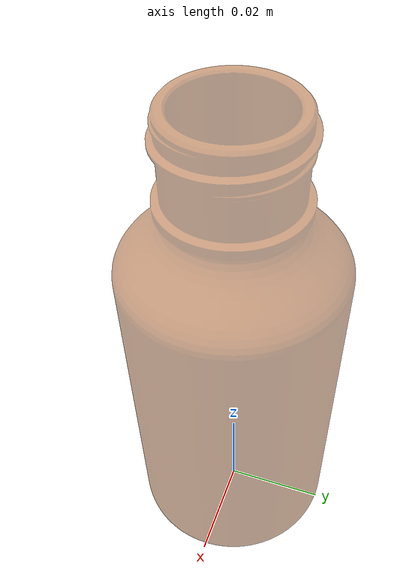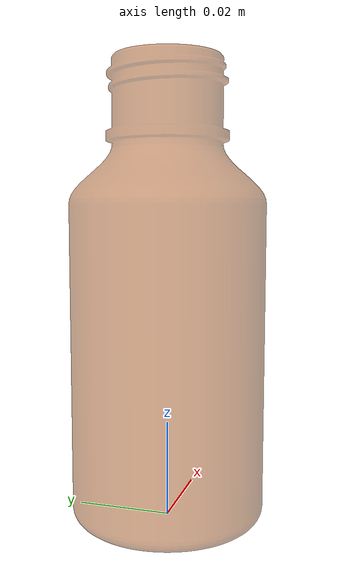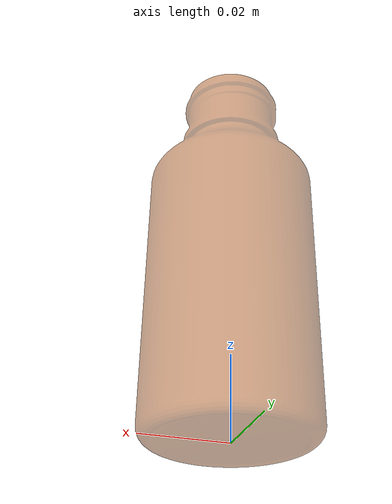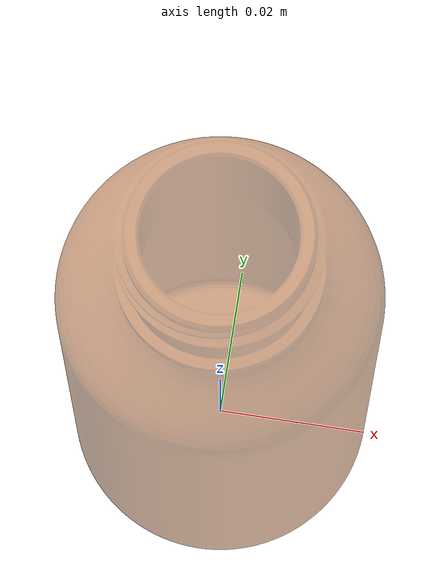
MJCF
<mujoco model="reference_bottle">
  <!-- Generated by scripts/generate_iris_pipette_scene.py; do not edit by hand. -->
  <compiler angle="radian" meshdir="meshes"/>
  <asset>
    <mesh name="amber_glass" file="amber_glass.stl" inertia="exact"/>
    <material name="bottle" rgba="0.62 0.28 0.05 0.5" specular="0.5" shininess="0.25"/>
  </asset>
  <worldbody>
    <body name="reference_bottle">
      <geom name="bottle_visual" type="mesh" mesh="amber_glass" material="bottle" density="2500"
            contype="0" conaffinity="0" group="2"/>
      <geom type="cylinder" pos="0 0 0.00125" quat="1 0 0 0" size="0.018 0.00125" contype="1" conaffinity="9" group="3" mass="0" friction="1 0.005 0.0001"/>
      <geom type="box" pos="0.019 0 0.034125" quat="1 0 0 0" size="0.001 0.00358042 0.031625" contype="1" conaffinity="9" group="3" mass="0" friction="1 0.005 0.0001"/>
      <geom type="box" pos="0.0175537 0.00727099 0.034125" quat="0.980785 0 0 0.19509" size="0.001 0.00358042 0.031625" contype="1" conaffinity="9" group="3" mass="0" friction="1 0.005 0.0001"/>
      <geom type="box" pos="0.013435 0.013435 0.034125" quat="0.92388 0 0 0.382683" size="0.001 0.00358042 0.031625" contype="1" conaffinity="9" group="3" mass="0" friction="1 0.005 0.0001"/>
      <geom type="box" pos="0.00727099 0.0175537 0.034125" quat="0.83147 0 0 0.55557" size="0.001 0.00358042 0.031625" contype="1" conaffinity="9" group="3" mass="0" friction="1 0.005 0.0001"/>
      <geom type="box" pos="1.16341e-18 0.019 0.034125" quat="0.707107 0 0 0.707107" size="0.001 0.00358042 0.031625" contype="1" conaffinity="9" group="3" mass="0" friction="1 0.005 0.0001"/>
      <geom type="box" pos="-0.00727099 0.0175537 0.034125" quat="0.55557 0 0 0.83147" size="0.001 0.00358042 0.031625" contype="1" conaffinity="9" group="3" mass="0" friction="1 0.005 0.0001"/>
      <geom type="box" pos="-0.013435 0.013435 0.034125" quat="0.382683 0 0 0.92388" size="0.001 0.00358042 0.031625" contype="1" conaffinity="9" group="3" mass="0" friction="1 0.005 0.0001"/>
      <geom type="box" pos="-0.0175537 0.00727099 0.034125" quat="0.19509 0 0 0.980785" size="0.001 0.00358042 0.031625" contype="1" conaffinity="9" group="3" mass="0" friction="1 0.005 0.0001"/>
      <geom type="box" pos="-0.019 2.32683e-18 0.034125" quat="6.12323e-17 0 0 1" size="0.001 0.00358042 0.031625" contype="1" conaffinity="9" group="3" mass="0" friction="1 0.005 0.0001"/>
      <geom type="box" pos="-0.0175537 -0.00727099 0.034125" quat="-0.19509 0 0 0.980785" size="0.001 0.00358042 0.031625" contype="1" conaffinity="9" group="3" mass="0" friction="1 0.005 0.0001"/>
      <geom type="box" pos="-0.013435 -0.013435 0.034125" quat="-0.382683 0 0 0.92388" size="0.001 0.00358042 0.031625" contype="1" conaffinity="9" group="3" mass="0" friction="1 0.005 0.0001"/>
      <geom type="box" pos="-0.00727099 -0.0175537 0.034125" quat="-0.55557 0 0 0.83147" size="0.001 0.00358042 0.031625" contype="1" conaffinity="9" group="3" mass="0" friction="1 0.005 0.0001"/>
      <geom type="box" pos="-3.49024e-18 -0.019 0.034125" quat="-0.707107 0 0 0.707107" size="0.001 0.00358042 0.031625" contype="1" conaffinity="9" group="3" mass="0" friction="1 0.005 0.0001"/>
      <geom type="box" pos="0.00727099 -0.0175537 0.034125" quat="-0.83147 0 0 0.55557" size="0.001 0.00358042 0.031625" contype="1" conaffinity="9" group="3" mass="0" friction="1 0.005 0.0001"/>
      <geom type="box" pos="0.013435 -0.013435 0.034125" quat="-0.92388 0 0 0.382683" size="0.001 0.00358042 0.031625" contype="1" conaffinity="9" group="3" mass="0" friction="1 0.005 0.0001"/>
      <geom type="box" pos="0.0175537 -0.00727099 0.034125" quat="-0.980785 0 0 0.19509" size="0.001 0.00358042 0.031625" contype="1" conaffinity="9" group="3" mass="0" friction="1 0.005 0.0001"/>
      <geom type="box" pos="0.010825 0 0.086375" quat="1 0 0 0" size="0.001625 0.00381076 0.008625" contype="1" conaffinity="9" group="3" mass="0" friction="1 0.005 0.0001"/>
      <geom type="box" pos="0.00765443 0.00765443 0.086375" quat="0.92388 0 0 0.382683" size="0.001625 0.00381076 0.008625" contype="1" conaffinity="9" group="3" mass="0" friction="1 0.005 0.0001"/>
      <geom type="box" pos="6.6284e-19 0.010825 0.086375" quat="0.707107 0 0 0.707107" size="0.001625 0.00381076 0.008625" contype="1" conaffinity="9" group="3" mass="0" friction="1 0.005 0.0001"/>
      <geom type="box" pos="-0.00765443 0.00765443 0.086375" quat="0.382683 0 0 0.92388" size="0.001625 0.00381076 0.008625" contype="1" conaffinity="9" group="3" mass="0" friction="1 0.005 0.0001"/>
      <geom type="box" pos="-0.010825 1.32568e-18 0.086375" quat="6.12323e-17 0 0 1" size="0.001625 0.00381076 0.008625" contype="1" conaffinity="9" group="3" mass="0" friction="1 0.005 0.0001"/>
      <geom type="box" pos="-0.00765443 -0.00765443 0.086375" quat="-0.382683 0 0 0.92388" size="0.001625 0.00381076 0.008625" contype="1" conaffinity="9" group="3" mass="0" friction="1 0.005 0.0001"/>
      <geom type="box" pos="-1.98852e-18 -0.010825 0.086375" quat="-0.707107 0 0 0.707107" size="0.001625 0.00381076 0.008625" contype="1" conaffinity="9" group="3" mass="0" friction="1 0.005 0.0001"/>
      <geom type="box" pos="0.00765443 -0.00765443 0.086375" quat="-0.92388 0 0 0.382683" size="0.001625 0.00381076 0.008625" contype="1" conaffinity="9" group="3" mass="0" friction="1 0.005 0.0001"/>
    </body>
  </worldbody>
</mujoco>
